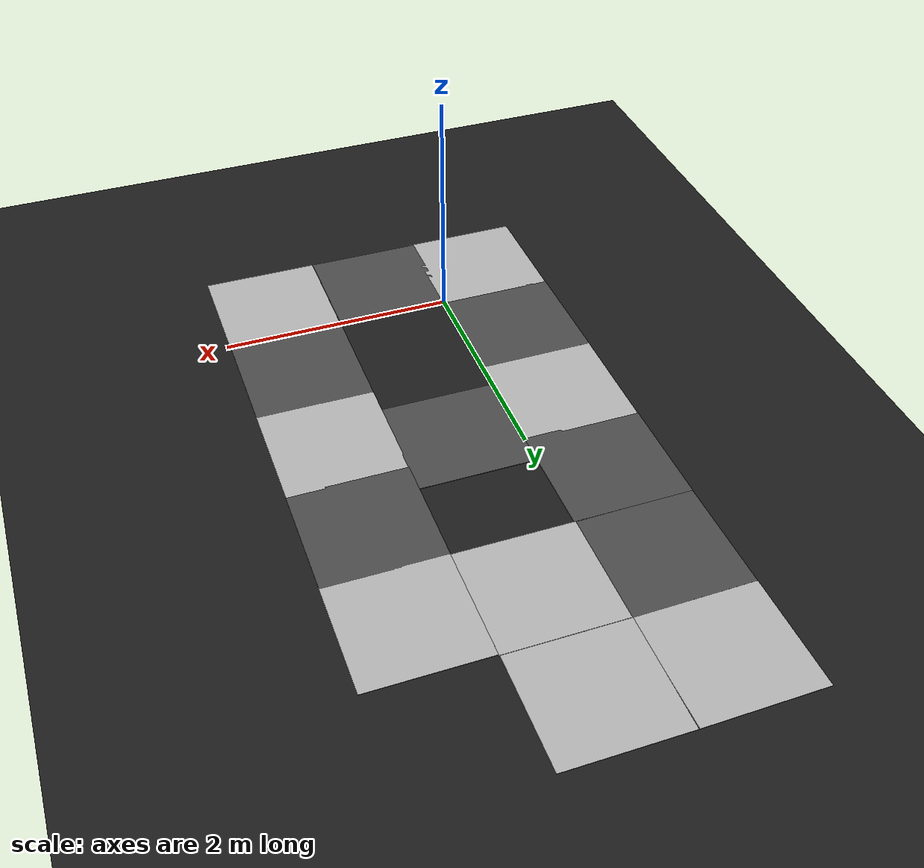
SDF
<sdf version="1.6">
 <world name="default">
  <light name="sun" type="directional">
   <pose>0 0 10 0 -0 0</pose>
   <diffuse>0.8 0.8 0.8 1</diffuse>
   <specular>0.2 0.2 0.2 1</specular>
   <attenuation>
    <range>1000</range>
    <constant>0.9</constant>
    <linear>0.01</linear>
    <quadratic>0.001</quadratic>
   </attenuation>
   <direction>-0.5 0.1 -0.9</direction>
  </light>
  <model name="ground_plane">
   <static>1</static>
   <link name="link">
    <collision name="collision">
     <geometry><plane><normal>0 0 1</normal><size>100 100</size></plane></geometry>
     <surface><friction><ode><mu>100</mu><mu2>50</mu2></ode></friction></surface>
    </collision>
    <visual name="visual">
     <cast_shadows>0</cast_shadows>
     <geometry><plane><normal>0 0 1</normal><size>100 100</size></plane></geometry>
     <material>
      <script><uri>file://media/materials/scripts/gazebo.material</uri><name>Gazebo/Black</name></script>
     </material>
    </visual>
   </link>
  </model>
  <gravity>0 0 -9.8</gravity>
  <magnetic_field>6e-06 2.3e-05 -4.2e-05</magnetic_field>
  <atmosphere type="adiabatic"/>
  <physics name="default_physics" default="0" type="ode">
   <max_step_size>0.01</max_step_size>
   <real_time_factor>1</real_time_factor>
   <real_time_update_rate>0</real_time_update_rate>
  </physics>
  <scene><ambient>0.4 0.4 0.4 1</ambient><background>0.7 0.7 0.7 1</background><shadows>1</shadows></scene>
  <spherical_coordinates>
   <surface_model>EARTH_WGS84</surface_model>
   <latitude_deg>0</latitude_deg>
   <longitude_deg>0</longitude_deg>
   <elevation>0</elevation>
   <heading_deg>0</heading_deg>
  </spherical_coordinates>
  <light name="user_directional_light_0" type="directional">
   <pose>-0.125952 -0.010846 1 0 -0 0</pose>
   <diffuse>0.5 0.5 0.5 1</diffuse>
   <specular>0.1 0.1 0.1 1</specular>
   <direction>0.1 0.1 -0.9</direction>
   <attenuation>
    <range>20</range>
    <constant>0.5</constant>
    <linear>0.01</linear>
    <quadratic>0.001</quadratic>
   </attenuation>
  </light>
  <model name="road_plane">
   <static>1</static>
   <link name="link">
    <collision name="collision"><geometry><box><size>0.5 0.5 0.005</size></box></geometry></collision>
    <visual name="visual">
     <cast_shadows>0</cast_shadows>
     <geometry><box><size>1 1 0.005</size></box></geometry>
     <material>
      <script>
       <uri>model://road_plane/materials/scripts</uri>
       <uri>model://road_plane/materials/textures</uri>
       <name>vrc/road</name>
      </script>
     </material>
    </visual>
   </link>
   <pose>0.474748 -0.479591 0 0 -0 0</pose>
  </model>
  <model name="road_diag">
   <static>1</static>
   <link name="link">
    <collision name="collision"><geometry><box><size>0.5 0.5 0.005</size></box></geometry></collision>
    <visual name="visual">
     <cast_shadows>0</cast_shadows>
     <geometry><box><size>1 1 0.005</size></box></geometry>
     <material>
      <script>
       <uri>model://road_diag/materials/scripts</uri>
       <uri>model://road_diag/materials/textures</uri>
       <name>vrc/diag</name>
      </script>
     </material>
    </visual>
   </link>
   <pose>1.47868 -0.480315 0 0 0 -1.57147</pose>
  </model>
  <model name="road_plane_0">
   <static>1</static>
   <link name="link">
    <collision name="collision"><geometry><box><size>0.5 0.5 0.005</size></box></geometry></collision>
    <visual name="visual">
     <cast_shadows>0</cast_shadows>
     <geometry><box><size>1 1 0.005</size></box></geometry>
     <material>
      <script>
       <uri>model://road_plane/materials/scripts</uri>
       <uri>model://road_plane/materials/textures</uri>
       <name>vrc/road</name>
      </script>
     </material>
    </visual>
   </link>
   <pose>1.47608 0.504135 0 0 -0 1.56891</pose>
  </model>
  <model name="road_plane_0_clone">
   <static>1</static>
   <link name="link">
    <collision name="collision"><geometry><box><size>0.5 0.5 0.005</size></box></geometry></collision>
    <visual name="visual">
     <cast_shadows>0</cast_shadows>
     <geometry><box><size>1 1 0.005</size></box></geometry>
     <material>
      <script>
       <uri>model://road_plane/materials/scripts</uri>
       <uri>model://road_plane/materials/textures</uri>
       <name>vrc/road</name>
      </script>
     </material>
    </visual>
   </link>
   <pose>1.47997 2.4864 0 0 -0 1.56891</pose>
  </model>
  <model name="road_diag_0">
   <static>1</static>
   <link name="link">
    <collision name="collision"><geometry><box><size>0.5 0.5 0.005</size></box></geometry></collision>
    <visual name="visual">
     <cast_shadows>0</cast_shadows>
     <geometry><box><size>1 1 0.005</size></box></geometry>
     <material>
      <script>
       <uri>model://road_diag/materials/scripts</uri>
       <uri>model://road_diag/materials/textures</uri>
       <name>vrc/diag</name>
      </script>
     </material>
    </visual>
   </link>
   <pose>1.48223 3.47704 0 0 -0 0</pose>
  </model>
  <model name="road_plane_clone">
   <static>1</static>
   <link name="link">
    <collision name="collision"><geometry><box><size>0.5 0.5 0.005</size></box></geometry></collision>
    <visual name="visual">
     <cast_shadows>0</cast_shadows>
     <geometry><box><size>1 1 0.005</size></box></geometry>
     <material>
      <script>
       <uri>model://road_plane/materials/scripts</uri>
       <uri>model://road_plane/materials/textures</uri>
       <name>vrc/road</name>
      </script>
     </material>
    </visual>
   </link>
   <pose>-0.506561 3.48178 0 0 0 -1.55732</pose>
  </model>
  <model name="road_diag_0_clone">
   <static>1</static>
   <link name="link">
    <collision name="collision"><geometry><box><size>0.5 0.5 0.005</size></box></geometry></collision>
    <visual name="visual">
     <cast_shadows>0</cast_shadows>
     <geometry><box><size>1 1 0.005</size></box></geometry>
     <material>
      <script>
       <uri>model://road_diag/materials/scripts</uri>
       <uri>model://road_diag/materials/textures</uri>
       <name>vrc/diag</name>
      </script>
     </material>
    </visual>
   </link>
   <pose>-0.52066 4.48188 0 0 -0 1.58282</pose>
  </model>
  <model name="road_plane_0_clone_clone">
   <static>1</static>
   <link name="link">
    <collision name="collision"><geometry><box><size>0.5 0.5 0.005</size></box></geometry></collision>
    <visual name="visual">
     <cast_shadows>0</cast_shadows>
     <geometry><box><size>1 1 0.005</size></box></geometry>
     <material>
      <script>
       <uri>model://road_plane/materials/scripts</uri>
       <uri>model://road_plane/materials/textures</uri>
       <name>vrc/road</name>
      </script>
     </material>
    </visual>
   </link>
   <pose>-0.500601 2.48236 0 0 0 -1.56646</pose>
  </model>
  <model name="road_plane_0_clone_clone_clone">
   <static>1</static>
   <link name="link">
    <collision name="collision"><geometry><box><size>0.5 0.5 0.005</size></box></geometry></collision>
    <visual name="visual">
     <cast_shadows>0</cast_shadows>
     <geometry><box><size>1 1 0.005</size></box></geometry>
     <material>
      <script>
       <uri>model://road_plane/materials/scripts</uri>
       <uri>model://road_plane/materials/textures</uri>
       <name>vrc/road</name>
      </script>
     </material>
    </visual>
   </link>
   <pose>-0.495631 0.507392 0 0 0 -1.56646</pose>
  </model>
  <model name="road_diag_clone">
   <static>1</static>
   <link name="link">
    <collision name="collision"><geometry><box><size>0.5 0.5 0.005</size></box></geometry></collision>
    <visual name="visual">
     <cast_shadows>0</cast_shadows>
     <geometry><box><size>1 1 0.005</size></box></geometry>
     <material>
      <script>
       <uri>model://road_diag/materials/scripts</uri>
       <uri>model://road_diag/materials/textures</uri>
       <name>vrc/diag</name>
      </script>
     </material>
    </visual>
   </link>
   <pose>-0.488946 -0.486041 0 0 0 -3.14005</pose>
  </model>
  <model name="road_inter">
   <static>1</static>
   <link name="link">
    <collision name="collision"><geometry><box><size>0.5 0.5 0.005</size></box></geometry></collision>
    <visual name="visual">
     <cast_shadows>0</cast_shadows>
     <geometry><box><size>1 1 0.005</size></box></geometry>
     <material>
      <script>
       <uri>model://road_inter/materials/scripts</uri>
       <uri>model://road_inter/materials/textures</uri>
       <name>vrc/inter</name>
      </script>
     </material>
    </visual>
   </link>
   <pose>1.47728 1.50186 0 0 -0 0</pose>
  </model>
  <model name="road_inter_0">
   <static>1</static>
   <link name="link">
    <collision name="collision"><geometry><box><size>0.5 0.5 0.005</size></box></geometry></collision>
    <visual name="visual">
     <cast_shadows>0</cast_shadows>
     <geometry><box><size>1 1 0.005</size></box></geometry>
     <material>
      <script>
       <uri>model://road_inter/materials/scripts</uri>
       <uri>model://road_inter/materials/textures</uri>
       <name>vrc/inter</name>
      </script>
     </material>
    </visual>
   </link>
   <pose>-0.495351 1.50569 0 0 -0 3.14073</pose>
  </model>
  <model name="road_plane_1">
   <static>1</static>
   <link name="link">
    <collision name="collision"><geometry><box><size>0.5 0.5 0.005</size></box></geometry></collision>
    <visual name="visual">
     <cast_shadows>0</cast_shadows>
     <geometry><box><size>1 1 0.005</size></box></geometry>
     <material>
      <script>
       <uri>model://road_plane/materials/scripts</uri>
       <uri>model://road_plane/materials/textures</uri>
       <name>vrc/road</name>
      </script>
     </material>
    </visual>
   </link>
   <pose>0.485788 1.75081 0 0 -0 0</pose>
  </model>
  <model name="road_diag_0_clone_0">
   <static>1</static>
   <link name="link">
    <collision name="collision"><geometry><box><size>0.5 0.5 0.005</size></box></geometry></collision>
    <visual name="visual">
     <cast_shadows>0</cast_shadows>
     <geometry><box><size>1 1 0.005</size></box></geometry>
     <material>
      <script>
       <uri>model://road_diag/materials/scripts</uri>
       <uri>model://road_diag/materials/textures</uri>
       <name>vrc/diag</name>
      </script>
     </material>
    </visual>
   </link>
   <pose>0.478949 4.48784 0 0 -0 0</pose>
  </model>
  <model name="road_diag_small">
   <static>1</static>
   <link name="link">
    <collision name="collision"><geometry><box><size>0.5 0.5 0.005</size></box></geometry></collision>
    <visual name="visual">
     <cast_shadows>0</cast_shadows>
     <geometry><box><size>1 1 0.005</size></box></geometry>
     <material>
      <script>
       <uri>model://road_diag_small/materials/scripts</uri>
       <uri>model://road_diag_small/materials/textures</uri>
       <name>vrc/diag_small</name>
      </script>
     </material>
    </visual>
   </link>
   <pose>0.482622 3.48417 0 0 0 -3.14031</pose>
  </model>
 </world>
</sdf>
